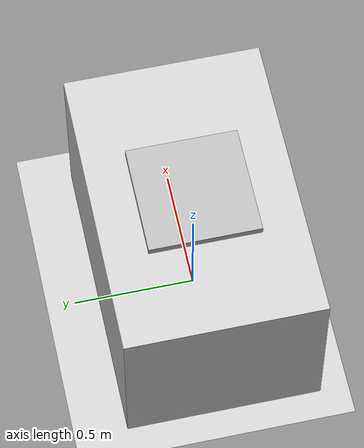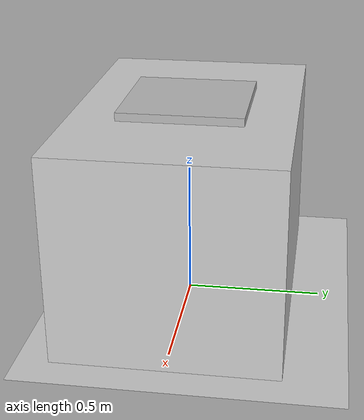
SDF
<?xml version="1.0" ?>
<sdf version="1.9">
  <world name="chess_world">
    <gravity>0 0 -9.81</gravity>

    <!-- Conservative physics for stability -->
    <physics name="physics" type="dart">
      <max_step_size>0.001</max_step_size>
      <real_time_factor>1.0</real_time_factor>
      <real_time_update_rate>1000</real_time_update_rate>
    </physics>

    <scene>
      <ambient>0.6 0.6 0.6 1</ambient>
      <background>0.95 0.95 0.95 1</background>
    </scene>

    <light name="sun" type="directional">
      <pose>0 0 10 0 0 0</pose>
      <direction>-0.2 0.1 -1</direction>
      <diffuse>1 1 1 1</diffuse>
      <specular>0.2 0.2 0.2 1</specular>
    </light>

    <!-- Ground -->
    <model name="ground_plane">
      <static>true</static>
      <link name="link">
        <collision name="collision">
          <geometry>
            <plane><normal>0 0 1</normal><size>50 50</size></plane>
          </geometry>
          <surface>
            <friction>
              <ode><mu>1.0</mu><mu2>1.0</mu2></ode>
            </friction>
          </surface>
        </collision>
        <visual name="visual">
          <geometry>
            <plane><normal>0 0 1</normal><size>50 50</size></plane>
          </geometry>
        </visual>
      </link>
    </model>

    <!-- Table: 1.2 x 0.8 x 0.75 -->
    <model name="table">
      <static>true</static>
      <pose>0 0 0.375 0 0 0</pose>
      <link name="link">
        <collision name="collision">
          <geometry><box><size>1.2 0.8 0.75</size></box></geometry>
          <surface>
            <friction>
              <ode><mu>1.2</mu><mu2>1.2</mu2></ode>
            </friction>
          </surface>
        </collision>
        <visual name="visual">
            <material>
                <ambient>0.8 0.8 0.8 1</ambient>
                <diffuse>0.8 0.8 0.8 1</diffuse>
                <specular>0.1 0.1 0.1 1</specular>
            </material>
          <geometry><box><size>1.2 0.8 0.75</size></box></geometry>
        </visual>
      </link>
    </model>

    <!-- Chessboard: 0.45 x 0.45 x 0.03, on top of table -->
    <model name="chessboard">
      <static>true</static>
      <pose>0 0 0.765 0 0 0</pose>
      <link name="link">
        <collision name="collision">
          <geometry><box><size>0.45 0.45 0.03</size></box></geometry>
          <surface>
            <friction>
              <ode><mu>1.5</mu><mu2>1.5</mu2></ode>
            </friction>
          </surface>
        </collision>
        <visual name="visual">
          <geometry><box><size>0.45 0.45 0.03</size></box></geometry>
        </visual>
      </link>
    </model>

<model name="overhead_rgbd_camera">
  <static>true</static>
  <pose>0 0 1.2 0 1.5708 0</pose> <!-- x y z roll pitch yaw; pitch=90deg downward -->
  <link name="link">
    <sensor name="rgb_camera" type="camera">
      <always_on>true</always_on>
      <update_rate>30</update_rate>
      <camera>
        <horizontal_fov>1.047</horizontal_fov>
        <image>
          <width>1280</width>
          <height>720</height>
          <format>R8G8B8</format>
        </image>
        <clip>
          <near>0.05</near>
          <far>5.0</far>
        </clip>
      </camera>
      <topic>/rgbd/rgb/image</topic>
    </sensor>

    <sensor name="depth_camera" type="depth_camera">
      <always_on>true</always_on>
      <update_rate>30</update_rate>
      <camera>
        <horizontal_fov>1.047</horizontal_fov>
        <image>
          <width>640</width>
          <height>480</height>
          <format>R_FLOAT32</format>
        </image>
        <clip>
          <near>0.05</near>
          <far>5.0</far>
        </clip>
      </camera>
      <topic>/rgbd/depth/image</topic>
    </sensor>
  </link>
</model>

  </world>
</sdf>
